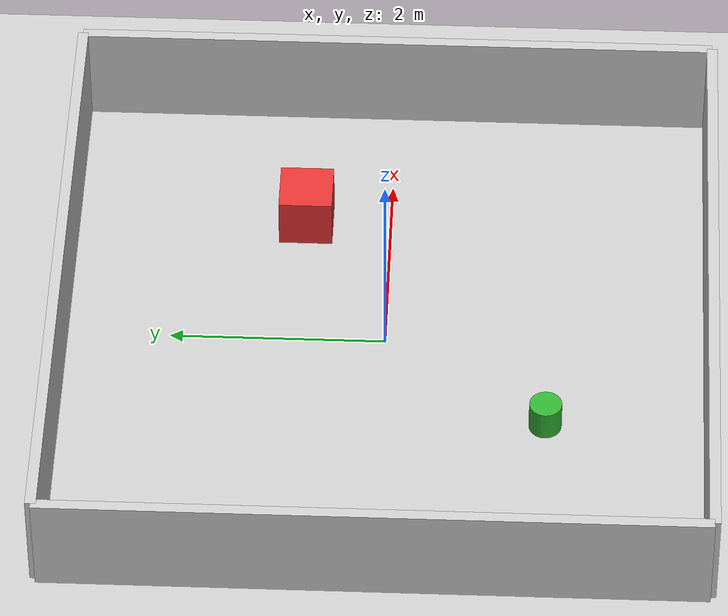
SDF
<?xml version="1.0" ?>
<sdf version="1.6">
  <world name="indoor_world">

    <include>
      <uri>https://fuel.gazebosim.org/1.0/mjcarroll/models/ground_plane</uri>
    </include>
    <include>
      <uri>https://fuel.gazebosim.org/1.0/mjcarroll/models/sun</uri>
    </include>

    <!-- ========== Wall 1 — front ========== -->
    <model name="wall_front">
      <static>true</static>
      <pose>3.0 0.0 0.5 0 0 0</pose>
      <link name="link">
        <visual name="visual">
          <geometry><box><size>0.1 6.0 1.0</size></box></geometry>
          <material><ambient>0.8 0.8 0.8 1</ambient></material>
        </visual>
        <collision name="collision">
          <geometry><box><size>0.1 6.0 1.0</size></box></geometry>
        </collision>
      </link>
    </model>

    <!-- ========== Wall 2 — back ========== -->
    <model name="wall_back">
      <static>true</static>
      <pose>-3.0 0.0 0.5 0 0 0</pose>
      <link name="link">
        <visual name="visual">
          <geometry><box><size>0.1 6.0 1.0</size></box></geometry>
          <material><ambient>0.8 0.8 0.8 1</ambient></material>
        </visual>
        <collision name="collision">
          <geometry><box><size>0.1 6.0 1.0</size></box></geometry>
        </collision>
      </link>
    </model>

    <!-- ========== Wall 3 — left ========== -->
    <model name="wall_left">
      <static>true</static>
      <pose>0.0 3.0 0.5 0 0 1.5708</pose>
      <link name="link">
        <visual name="visual">
          <geometry><box><size>0.1 6.0 1.0</size></box></geometry>
          <material><ambient>0.8 0.8 0.8 1</ambient></material>
        </visual>
        <collision name="collision">
          <geometry><box><size>0.1 6.0 1.0</size></box></geometry>
        </collision>
      </link>
    </model>

    <!-- ========== Wall 4 — right ========== -->
    <model name="wall_right">
      <static>true</static>
      <pose>0.0 -3.0 0.5 0 0 1.5708</pose>
      <link name="link">
        <visual name="visual">
          <geometry><box><size>0.1 6.0 1.0</size></box></geometry>
          <material><ambient>0.8 0.8 0.8 1</ambient></material>
        </visual>
        <collision name="collision">
          <geometry><box><size>0.1 6.0 1.0</size></box></geometry>
        </collision>
      </link>
    </model>

    <!-- ========== Obstacle Box 1 ========== -->
    <model name="obstacle_box_1">
      <static>true</static>
      <pose>1.5 0.8 0.25 0 0 0</pose>
      <link name="link">
        <visual name="visual">
          <geometry><box><size>0.5 0.5 0.5</size></box></geometry>
          <material><ambient>0.9 0.2 0.2 1</ambient></material>
        </visual>
        <collision name="collision">
          <geometry><box><size>0.5 0.5 0.5</size></box></geometry>
        </collision>
      </link>
    </model>

    <!-- ========== Obstacle Box 2 ========== -->
    <model name="obstacle_box_2">
      <static>true</static>
      <pose>-1.0 -1.5 0.15 0 0 0.785</pose>
      <link name="link">
        <visual name="visual">
          <geometry><cylinder><radius>0.15</radius><length>0.3</length></cylinder></geometry>
          <material><ambient>0.2 0.7 0.2 1</ambient></material>
        </visual>
        <collision name="collision">
          <geometry><cylinder><radius>0.15</radius><length>0.3</length></cylinder></geometry>
        </collision>
      </link>
    </model>

  </world>
</sdf>
